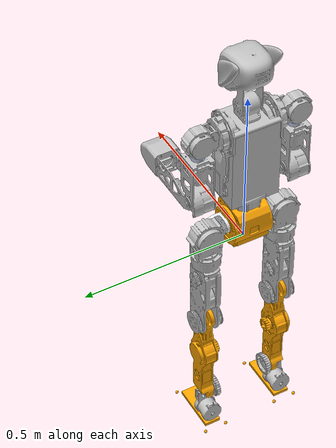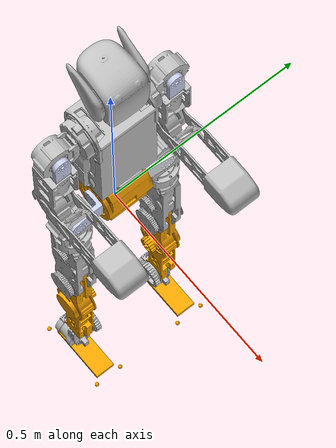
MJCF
<mujoco model="E1_v2">
  <compiler angle="radian" meshdir="../meshes/"/>

  <asset>
    <mesh name="pelvis" file="pelvis.STL"/>
    <mesh name="left_hip_pitch_link" file="left_hip_pitch_link.STL"/>
    <mesh name="left_hip_roll_link" file="left_hip_roll_link.STL"/>
    <mesh name="left_hip_yaw_link" file="left_hip_yaw_link.STL"/>
    <mesh name="left_knee_link" file="left_knee_link.STL"/>
    <mesh name="left_ankle_pitch_link" file="left_ankle_pitch_link.STL"/>
    <mesh name="right_hip_pitch_link" file="right_hip_pitch_link.STL"/>
    <mesh name="right_hip_roll_link" file="right_hip_roll_link.STL"/>
    <mesh name="right_hip_yaw_link" file="right_hip_yaw_link.STL"/>
    <mesh name="right_knee_link" file="right_knee_link.STL"/>
    <mesh name="right_ankle_pitch_link" file="right_ankle_pitch_link.STL"/>
    <mesh name="torso_link" file="torso_link.STL"/>
    <mesh name="left_shoulder_pitch_link" file="left_shoulder_pitch_link.STL"/>
    <mesh name="left_shoulder_roll_link" file="left_shoulder_roll_link.STL"/>
    <mesh name="left_shoulder_yaw_link" file="left_shoulder_yaw_link.STL"/>
    <mesh name="left_elbow_link" file="left_elbow_link.STL"/>
    <mesh name="right_shoulder_pitch_link" file="right_shoulder_pitch_link.STL"/>
    <mesh name="right_shoulder_roll_link" file="right_shoulder_roll_link.STL"/>
    <mesh name="right_shoulder_yaw_link" file="right_shoulder_yaw_link.STL"/>
    <mesh name="right_elbow_link" file="right_elbow_link.STL"/>
    <mesh name="head_link" file="head_link.STL"/>
  </asset>

  <worldbody>
    <geom type="mesh" contype="0" conaffinity="0" group="1" density="0" rgba="1 0.64706 0 1" mesh="pelvis"/>
    <geom size="0.05 0.05 0.05" pos="0 0 0.07" type="box" rgba="1 0.64706 0 1"/>
    <body name="left_hip_pitch_link" pos="0 0.057 0.065">
      <inertial pos="0.020044 0.0301526 -0.00422561" quat="0.627234 0.686462 0.353637 -0.101436" mass="0.18" diaginertia="0.000177793 0.000150738 5.17688e-05"/>
      <joint name="left_hip_pitch_joint" pos="0 0 0" axis="0 1 0" range="-2.7053 2.7053" actuatorfrcrange="-60 60"/>
      <geom type="mesh" contype="0" conaffinity="0" group="1" density="0" rgba="0.89804 0.91765 0.92941 1" mesh="left_hip_pitch_link"/>
      <body name="left_hip_roll_link" pos="0 0.065 -0.013057">
        <inertial pos="-0.00068638 -5.009e-05 -0.0357735" quat="0.999944 0.00308008 0.00965317 -0.00314352" mass="1.665" diaginertia="0.00409391 0.00387212 0.00178131"/>
        <joint name="left_hip_roll_joint" pos="0 0 0" axis="1 0 0" range="-0.5236 3.1416" actuatorfrcrange="-60 60"/>
        <geom type="mesh" contype="0" conaffinity="0" group="1" density="0" rgba="0.75294 0.75294 0.75294 1" mesh="left_hip_roll_link"/>
        <body name="left_hip_yaw_link" pos="0 0 -0.106">
          <inertial pos="0.00068457 -7.417e-05 -0.123295" quat="0.704428 0.0135549 0.00294679 0.70964" mass="2.055" diaginertia="0.0141754 0.0138037 0.00232509"/>
          <joint name="left_hip_yaw_joint" pos="0 0 0" axis="0 0 1" range="-2.0944 2.0944" actuatorfrcrange="-36 36"/>
          <geom type="mesh" contype="0" conaffinity="0" group="1" density="0" rgba="0.75294 0.75294 0.75294 1" mesh="left_hip_yaw_link"/>
          <body name="left_knee_link" pos="0 0 -0.228">
            <inertial pos="0.00371192 -0.00097881 -0.156429" quat="0.714688 0.000482624 -0.00500608 0.699426" mass="1.4" diaginertia="0.0153519 0.0151967 0.000832227"/>
            <joint name="left_knee_joint" pos="0 0 0" axis="0 1 0" range="0 2.2689" actuatorfrcrange="-59.3 59.3"/>
            <geom type="mesh" contype="0" conaffinity="0" group="1" density="0" rgba="1 0.64706 0 1" mesh="left_knee_link"/>
            <geom size="0.015 0.015 0.13" pos="0 0 -0.16" type="box" rgba="1 0.64706 0 1"/>
            <body name="left_ankle_pitch_link" pos="0 0 -0.32">
              <inertial pos="-0.0109096 -0.00574639 -0.0370866" quat="0.440961 -0.20841 0.0425785 0.871955" mass="0.785" diaginertia="0.00124346 0.00101122 0.000536033"/>
              <joint name="left_ankle_pitch_joint" pos="0 0 0" axis="0 1 0" range="-0.5236 0.5236" actuatorfrcrange="-59.3 59.3"/>
              <geom type="mesh" contype="0" conaffinity="0" group="1" density="0" rgba="0.75294 0.75294 0.75294 1" mesh="left_ankle_pitch_link"/>
              <body name="left_ankle_roll_link" pos="0 0 -0.06">
                <inertial pos="0.0123494 -6.993e-05 -0.0320654" quat="-0.000493007 0.69858 -0.00216045 0.715529" mass="0.275" diaginertia="0.000792703 0.000716452 0.000128165"/>
                <joint name="left_ankle_roll_joint" pos="0 0 0" axis="1 0 0" range="-1.5708 1.5708" actuatorfrcrange="-14 14"/>
                <geom size="0.075 0.025 0.005" pos="0.02 0 -0.04" type="box" contype="0" conaffinity="0" group="1" density="0" rgba="1 0.64706 0 1"/>
                <geom size="0.075 0.025 0.005" pos="0.02 0 -0.04" type="box" rgba="1 0.64706 0 1"/>
                <geom size="0.005" pos="0.107 0.035 -0.045" rgba="1 0.64706 0 1"/>
                <geom size="0.005" pos="0.107 -0.035 -0.045" rgba="1 0.64706 0 1"/>
                <geom size="0.005" pos="-0.073 0.035 -0.045" rgba="1 0.64706 0 1"/>
                <geom size="0.005" pos="-0.073 -0.035 -0.045" rgba="1 0.64706 0 1"/>
              </body>
            </body>
          </body>
        </body>
      </body>
    </body>
    <body name="right_hip_pitch_link" pos="0 -0.057 0.065">
      <inertial pos="0.020044 -0.0301526 -0.00422561" quat="0.686462 0.627234 0.101436 -0.353637" mass="0.18" diaginertia="0.000177793 0.000150738 5.17688e-05"/>
      <joint name="right_hip_pitch_joint" pos="0 0 0" axis="0 1 0" range="-2.7053 2.7053" actuatorfrcrange="-60 60"/>
      <geom type="mesh" contype="0" conaffinity="0" group="1" density="0" rgba="0.79216 0.81961 0.93333 1" mesh="right_hip_pitch_link"/>
      <body name="right_hip_roll_link" pos="0 -0.065 -0.013057">
        <inertial pos="-0.00068634 5.01e-05 -0.0357735" quat="0.999947 -0.00313967 0.00963826 -0.00195039" mass="1.665" diaginertia="0.00409389 0.00387212 0.00178131"/>
        <joint name="right_hip_roll_joint" pos="0 0 0" axis="1 0 0" range="-3.1416 0.5236" actuatorfrcrange="-60 60"/>
        <geom type="mesh" contype="0" conaffinity="0" group="1" density="0" rgba="0.75294 0.75294 0.75294 1" mesh="right_hip_roll_link"/>
        <body name="right_hip_yaw_link" pos="0 0 -0.106">
          <inertial pos="0.00068454 7.42e-05 -0.123295" quat="0.70964 0.0029471 0.0135552 0.704428" mass="2.0055" diaginertia="0.0141754 0.0138037 0.00232509"/>
          <joint name="right_hip_yaw_joint" pos="0 0 0" axis="0 0 1" range="-2.0944 2.0944" actuatorfrcrange="-36 36"/>
          <geom type="mesh" contype="0" conaffinity="0" group="1" density="0" rgba="0.75294 0.75294 0.75294 1" mesh="right_hip_yaw_link"/>
          <body name="right_knee_link" pos="0 0 -0.228">
            <inertial pos="0.00371191 0.0009788 -0.156429" quat="0.699426 -0.00500584 0.000482867 0.714687" mass="1.4" diaginertia="0.0153519 0.0151967 0.000832227"/>
            <joint name="right_knee_joint" pos="0 0 0" axis="0 1 0" range="0 2.2689" actuatorfrcrange="-59.3 59.3"/>
            <geom type="mesh" contype="0" conaffinity="0" group="1" density="0" rgba="1 0.64706 0 1" mesh="right_knee_link"/>
            <geom size="0.015 0.015 0.13" pos="0 0 -0.16" type="box" rgba="1 0.64706 0 1"/>
            <body name="right_ankle_pitch_link" pos="0 0 -0.32">
              <inertial pos="-0.0109096 0.00574639 -0.0370867" quat="0.871955 0.0425785 -0.20841 0.440961" mass="0.785" diaginertia="0.00124346 0.00101122 0.000536033"/>
              <joint name="right_ankle_pitch_joint" pos="0 0 0" axis="0 1 0" range="-0.5236 0.5236" actuatorfrcrange="-59.3 59.3"/>
              <geom type="mesh" contype="0" conaffinity="0" group="1" density="0" rgba="0.75294 0.75294 0.75294 1" mesh="right_ankle_pitch_link"/>
              <body name="right_ankle_roll_link" pos="0 0 -0.06">
                <inertial pos="0.0123494 6.993e-05 -0.0320654" quat="0.000493007 0.69858 0.00216045 0.715529" mass="0.275" diaginertia="0.000792703 0.000716452 0.000128165"/>
                <joint name="right_ankle_roll_joint" pos="0 0 0" axis="1 0 0" range="-1.5708 1.5708" actuatorfrcrange="-14 14"/>
                <geom size="0.075 0.025 0.005" pos="0.02 0 -0.04" type="box" contype="0" conaffinity="0" group="1" density="0" rgba="1 0.64706 0 1"/>
                <geom size="0.075 0.025 0.005" pos="0.02 0 -0.04" type="box" rgba="1 0.64706 0 1"/>
                <geom size="0.005" pos="0.107 0.035 -0.045" rgba="1 0.64706 0 1"/>
                <geom size="0.005" pos="0.107 -0.035 -0.045" rgba="1 0.64706 0 1"/>
                <geom size="0.005" pos="-0.073 0.035 -0.045" rgba="1 0.64706 0 1"/>
                <geom size="0.005" pos="-0.073 -0.035 -0.045" rgba="1 0.64706 0 1"/>
              </body>
            </body>
          </body>
        </body>
      </body>
    </body>
    <body name="torso_link" pos="0 0 0.135">
      <inertial pos="0.017486 -0.000240881 0.19779" quat="0.997775 -0.00132427 0.0666636 0.000196271" mass="8.2" diaginertia="0.150933 0.137221 0.026895"/>
      <joint name="waist_yaw_joint" pos="0 0 0" axis="0 0 1" range="-1.5708 1.5708" actuatorfrcrange="-60 60"/>
      <geom type="mesh" contype="0" conaffinity="0" group="1" density="0" rgba="0.75294 0.75294 0.75294 1" mesh="torso_link"/>
      <geom size="0.055 0.075 0.13" pos="0 0 0.17" type="box" rgba="0.75294 0.75294 0.75294 1"/>
      <geom pos="0 0 0.308" quat="1 0 0 0" type="mesh" contype="0" conaffinity="0" group="1" density="0" rgba="0.75294 0.75294 0.75294 1" mesh="head_link"/>
      <geom pos="0 0 0.308" quat="1 0 0 0" type="mesh" rgba="0.75294 0.75294 0.75294 1" mesh="head_link"/>
      <body name="left_shoulder_pitch_link" pos="0 0.0985 0.28">
        <inertial pos="-0.0029314 0.041987 -2.95e-06" quat="0.706745 0.706919 -0.0197448 -0.0196724" mass="0.7" diaginertia="0.000833414 0.00069977 0.000500536"/>
        <joint name="left_shoulder_pitch_joint" pos="0 0 0" axis="0 1 0" range="-1.0472 2.7925" actuatorfrcrange="-36 36"/>
        <geom type="mesh" contype="0" conaffinity="0" group="1" density="0" rgba="0.75294 0.75294 0.75294 1" mesh="left_shoulder_pitch_link"/>
        <body name="left_shoulder_roll_link" pos="0 0.052 0">
          <inertial pos="0.017782 0 -0.0289723" quat="0.988463 0 -0.151464 0" mass="0.15" diaginertia="0.000100297 9.367e-05 3.51927e-05"/>
          <joint name="left_shoulder_roll_joint" pos="0 0 0" axis="1 0 0" range="-0.1745 2.9671" actuatorfrcrange="-36 36"/>
          <geom type="mesh" contype="0" conaffinity="0" group="1" density="0" rgba="0.79216 0.81961 0.93333 1" mesh="left_shoulder_roll_link"/>
          <body name="left_shoulder_yaw_link" pos="0 0 -0.057">
            <inertial pos="-0.00319289 -9.4e-05 -0.0885952" quat="0.968587 0.0147306 -0.0241296 -0.247062" mass="1.4" diaginertia="0.00581143 0.00568508 0.00128079"/>
            <joint name="left_shoulder_yaw_joint" pos="0 0 0" axis="0 0 1" range="-2.618 2.618" actuatorfrcrange="-14 14"/>
            <geom type="mesh" contype="0" conaffinity="0" group="1" density="0" rgba="0.75294 0.75294 0.75294 1" mesh="left_shoulder_yaw_link"/>
            <body name="left_elbow_link" pos="0 0 -0.153">
              <inertial pos="0.191825 -0.00153935 -0.00059239" quat="-0.00777362 0.717071 0.00120043 0.696955" mass="0.5" diaginertia="0.00215959 0.00210749 0.000501129"/>
              <joint name="left_elbow_joint" pos="0 0 0" axis="0 1 0" range="-0.6981 1.5708" actuatorfrcrange="-36 36"/>
              <geom type="mesh" contype="0" conaffinity="0" group="1" density="0" rgba="0.75294 0.75294 0.75294 1" mesh="left_elbow_link"/>
              <geom type="mesh" rgba="0.75294 0.75294 0.75294 1" mesh="left_elbow_link"/>
            </body>
          </body>
        </body>
      </body>
      <body name="right_shoulder_pitch_link" pos="0 -0.0985 0.28">
        <inertial pos="-0.0029314 -0.0422941 -0.00218097" quat="0.731807 0.680677 0.0160547 0.0296457" mass="0.7" diaginertia="0.000839004 0.00070504 0.000500036"/>
        <joint name="right_shoulder_pitch_joint" pos="0 0 0" axis="0 1 0" range="-1.0472 2.7925" actuatorfrcrange="-36 36"/>
        <geom type="mesh" contype="0" conaffinity="0" group="1" density="0" rgba="0.75294 0.75294 0.75294 1" mesh="right_shoulder_pitch_link"/>
        <body name="right_shoulder_roll_link" pos="0 -0.051904 -0.0028082">
          <inertial pos="0.017782 0 -0.0289723" quat="0.988463 0 -0.151464 0" mass="0.15" diaginertia="0.000100297 9.367e-05 3.51927e-05"/>
          <joint name="right_shoulder_roll_joint" pos="0 0 0" axis="1 0 0" range="-2.9671 0.1745" actuatorfrcrange="-36 36"/>
          <geom type="mesh" contype="0" conaffinity="0" group="1" density="0" rgba="0.79216 0.81961 0.93333 1" mesh="right_shoulder_roll_link"/>
          <body name="right_shoulder_yaw_link" pos="0 0 -0.057">
            <inertial pos="-0.00319289 -9.4e-05 -0.0885952" quat="0.964815 -0.000336881 0.0278801 0.261448" mass="1.4" diaginertia="0.0058179 0.00567841 0.00128099"/>
            <joint name="right_shoulder_yaw_joint" pos="0 0 0" axis="0 0 1" range="-2.618 2.618" actuatorfrcrange="-14 14"/>
            <geom type="mesh" contype="0" conaffinity="0" group="1" density="0" rgba="0.75294 0.75294 0.75294 1" mesh="right_shoulder_yaw_link"/>
            <body name="right_elbow_link" pos="0 0 -0.153">
              <inertial pos="0.191825 -0.00153935 -0.00059239" quat="-0.00777362 0.717071 0.00120043 0.696955" mass="0.5" diaginertia="0.00215959 0.00210749 0.000501129"/>
              <joint name="right_elbow_joint" pos="0 0 0" axis="0 1 0" range="-0.6981 1.5708" actuatorfrcrange="-36 36"/>
              <geom type="mesh" contype="0" conaffinity="0" group="1" density="0" rgba="0.75294 0.75294 0.75294 1" mesh="right_elbow_link"/>
              <geom type="mesh" rgba="0.75294 0.75294 0.75294 1" mesh="right_elbow_link"/>
            </body>
          </body>
        </body>
      </body>
    </body>
  </worldbody>
</mujoco>
